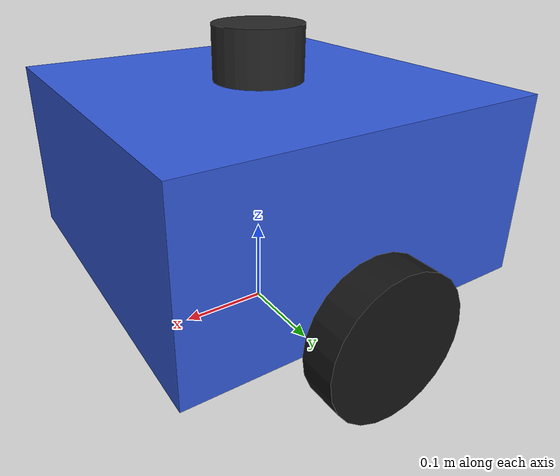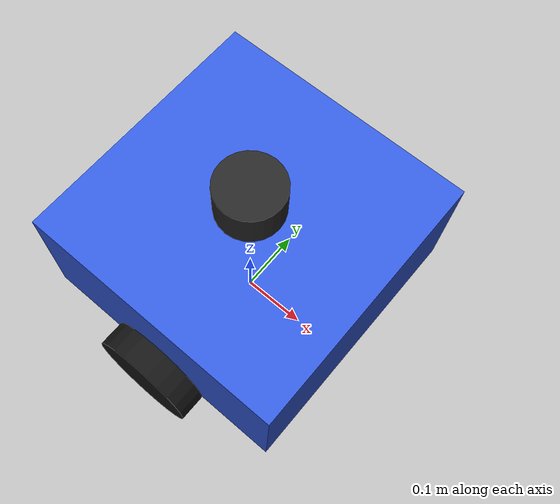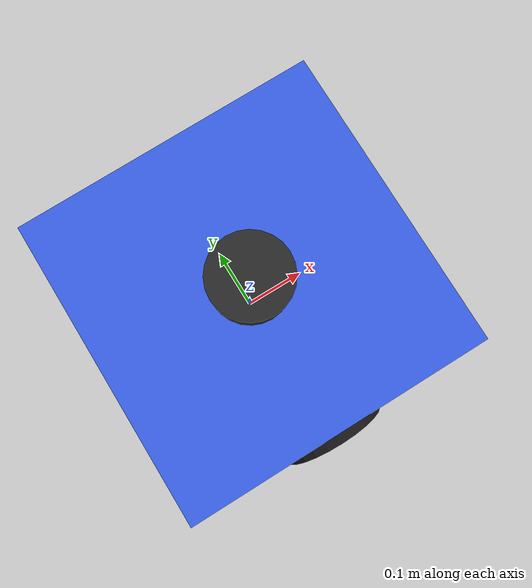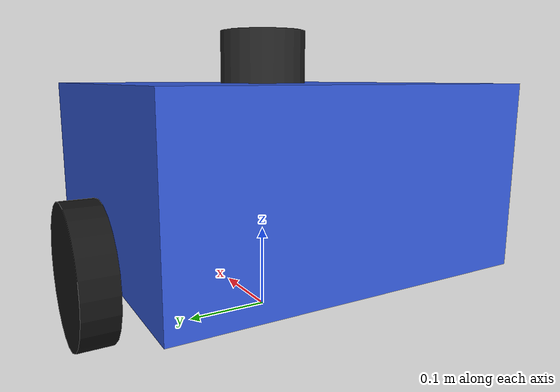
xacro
<?xml version="1.0"?>
<robot xmlns:xacro="http://www.ros.org/wiki/xacro" name="pos_v2_robot">

  <!-- ${pi} is a xacro built-in; do not redefine it (xacro warns -> launch.Command treats stderr as fatal). -->

  <!-- Base dimensions: small AGV, fits aisles and door easily. -->
  <xacro:property name="base_length" value="0.4"/>
  <xacro:property name="base_width" value="0.4"/>
  <xacro:property name="base_height" value="0.2"/>
  <xacro:property name="base_mass" value="5.0"/>

  <xacro:property name="wheel_radius" value="0.08"/>
  <xacro:property name="wheel_width" value="0.04"/>
  <xacro:property name="wheel_mass" value="0.5"/>
  <xacro:property name="wheel_separation" value="0.44"/>

  <xacro:property name="caster_radius" value="0.04"/>

  <xacro:property name="lidar_radius" value="0.05"/>
  <xacro:property name="lidar_height" value="0.06"/>

  <link name="base_footprint"/>

  <joint name="base_footprint_to_base" type="fixed">
    <parent link="base_footprint"/>
    <child link="base_link"/>
    <origin xyz="0 0 ${wheel_radius}" rpy="0 0 0"/>
  </joint>

  <link name="base_link">
    <visual>
      <origin xyz="0 0 ${base_height/2}" rpy="0 0 0"/>
      <geometry>
        <box size="${base_length} ${base_width} ${base_height}"/>
      </geometry>
      <material name="agv_blue">
        <color rgba="0.20 0.35 0.85 1.0"/>
      </material>
    </visual>
    <collision>
      <origin xyz="0 0 ${base_height/2}" rpy="0 0 0"/>
      <geometry>
        <box size="${base_length} ${base_width} ${base_height}"/>
      </geometry>
    </collision>
    <inertial>
      <origin xyz="0 0 ${base_height/2}" rpy="0 0 0"/>
      <mass value="${base_mass}"/>
      <inertia
        ixx="${base_mass*(base_width*base_width + base_height*base_height)/12}"
        ixy="0" ixz="0"
        iyy="${base_mass*(base_length*base_length + base_height*base_height)/12}"
        iyz="0"
        izz="${base_mass*(base_length*base_length + base_width*base_width)/12}"/>
    </inertial>
  </link>

  <xacro:macro name="drive_wheel" params="prefix y_offset">
    <link name="${prefix}_wheel_link">
      <visual>
        <origin xyz="0 0 0" rpy="${pi/2} 0 0"/>
        <geometry>
          <cylinder radius="${wheel_radius}" length="${wheel_width}"/>
        </geometry>
        <material name="wheel_black">
          <color rgba="0.08 0.08 0.08 1.0"/>
        </material>
      </visual>
      <collision>
        <origin xyz="0 0 0" rpy="${pi/2} 0 0"/>
        <geometry>
          <cylinder radius="${wheel_radius}" length="${wheel_width}"/>
        </geometry>
      </collision>
      <inertial>
        <mass value="${wheel_mass}"/>
        <inertia
          ixx="${wheel_mass*(3*wheel_radius*wheel_radius + wheel_width*wheel_width)/12}"
          ixy="0" ixz="0"
          iyy="${wheel_mass*(3*wheel_radius*wheel_radius + wheel_width*wheel_width)/12}"
          iyz="0"
          izz="${wheel_mass*wheel_radius*wheel_radius/2}"/>
      </inertial>
    </link>
    <joint name="${prefix}_wheel_joint" type="continuous">
      <parent link="base_link"/>
      <child link="${prefix}_wheel_link"/>
      <origin xyz="0 ${y_offset} 0" rpy="0 0 0"/>
      <axis xyz="0 1 0"/>
    </joint>
  </xacro:macro>

  <xacro:drive_wheel prefix="left"  y_offset="${ wheel_separation/2}"/>
  <xacro:drive_wheel prefix="right" y_offset="${-wheel_separation/2}"/>

  <!-- Front caster: low-friction ball, keeps the base level. -->
  <link name="caster_link">
    <visual>
      <geometry>
        <sphere radius="${caster_radius}"/>
      </geometry>
      <material name="caster_gray">
        <color rgba="0.30 0.30 0.30 1.0"/>
      </material>
    </visual>
    <collision>
      <geometry>
        <sphere radius="${caster_radius}"/>
      </geometry>
    </collision>
    <inertial>
      <mass value="0.1"/>
      <inertia ixx="0.0001" ixy="0" ixz="0" iyy="0.0001" iyz="0" izz="0.0001"/>
    </inertial>
  </link>

  <joint name="caster_joint" type="fixed">
    <parent link="base_link"/>
    <child link="caster_link"/>
    <origin xyz="${base_length/2 - caster_radius - 0.02} 0 ${-wheel_radius + caster_radius}" rpy="0 0 0"/>
  </joint>

  <gazebo reference="caster_link">
    <mu1>0.001</mu1>
    <mu2>0.001</mu2>
  </gazebo>

  <!-- 2D lidar on top of the base. -->
  <link name="lidar_link">
    <visual>
      <geometry>
        <cylinder radius="${lidar_radius}" length="${lidar_height}"/>
      </geometry>
      <material name="lidar_gray">
        <color rgba="0.15 0.15 0.15 1.0"/>
      </material>
    </visual>
    <collision>
      <geometry>
        <cylinder radius="${lidar_radius}" length="${lidar_height}"/>
      </geometry>
    </collision>
    <inertial>
      <mass value="0.1"/>
      <inertia ixx="0.0001" ixy="0" ixz="0" iyy="0.0001" iyz="0" izz="0.0001"/>
    </inertial>
  </link>

  <joint name="lidar_joint" type="fixed">
    <parent link="base_link"/>
    <child link="lidar_link"/>
    <origin xyz="0 0 ${base_height + lidar_height/2}" rpy="0 0 0"/>
  </joint>

  <!-- IMU mounted in the base. -->
  <link name="imu_link">
    <inertial>
      <mass value="0.01"/>
      <inertia ixx="0.00001" ixy="0" ixz="0" iyy="0.00001" iyz="0" izz="0.00001"/>
    </inertial>
  </link>

  <joint name="imu_joint" type="fixed">
    <parent link="base_link"/>
    <child link="imu_link"/>
    <origin xyz="0 0 ${base_height*0.8}" rpy="0 0 0"/>
  </joint>

  <!-- Gazebo plugins: diff-drive + joint state. -->
  <gazebo>
    <plugin filename="gz-sim-diff-drive-system"
            name="gz::sim::systems::DiffDrive">
      <left_joint>left_wheel_joint</left_joint>
      <right_joint>right_wheel_joint</right_joint>
      <wheel_separation>${wheel_separation}</wheel_separation>
      <wheel_radius>${wheel_radius}</wheel_radius>
      <odom_publish_frequency>50</odom_publish_frequency>
      <max_linear_acceleration>1.0</max_linear_acceleration>
      <max_angular_acceleration>2.0</max_angular_acceleration>
      <topic>cmd_vel</topic>
      <odom_topic>odom</odom_topic>
      <tf_topic>tf</tf_topic>
      <frame_id>odom</frame_id>
      <child_frame_id>base_footprint</child_frame_id>
    </plugin>

    <plugin filename="gz-sim-joint-state-publisher-system"
            name="gz::sim::systems::JointStatePublisher">
      <topic>joint_states</topic>
      <joint_name>left_wheel_joint</joint_name>
      <joint_name>right_wheel_joint</joint_name>
    </plugin>
  </gazebo>

  <!-- Sensors. -->
  <gazebo reference="lidar_link">
    <sensor name="lidar" type="gpu_lidar">
      <topic>scan</topic>
      <gz_frame_id>lidar_link</gz_frame_id>
      <update_rate>10</update_rate>
      <always_on>true</always_on>
      <visualize>true</visualize>
      <lidar>
        <scan>
          <horizontal>
            <samples>360</samples>
            <resolution>1</resolution>
            <min_angle>-${pi}</min_angle>
            <max_angle> ${pi}</max_angle>
          </horizontal>
          <vertical>
            <samples>1</samples>
            <resolution>1</resolution>
            <min_angle>0</min_angle>
            <max_angle>0</max_angle>
          </vertical>
        </scan>
        <range>
          <min>0.12</min>
          <max>12.0</max>
          <resolution>0.01</resolution>
        </range>
        <noise>
          <type>gaussian</type>
          <mean>0.0</mean>
          <stddev>0.01</stddev>
        </noise>
      </lidar>
    </sensor>
  </gazebo>

  <gazebo reference="imu_link">
    <sensor name="imu" type="imu">
      <topic>imu</topic>
      <gz_frame_id>imu_link</gz_frame_id>
      <update_rate>100</update_rate>
      <always_on>true</always_on>
    </sensor>
  </gazebo>

</robot>
